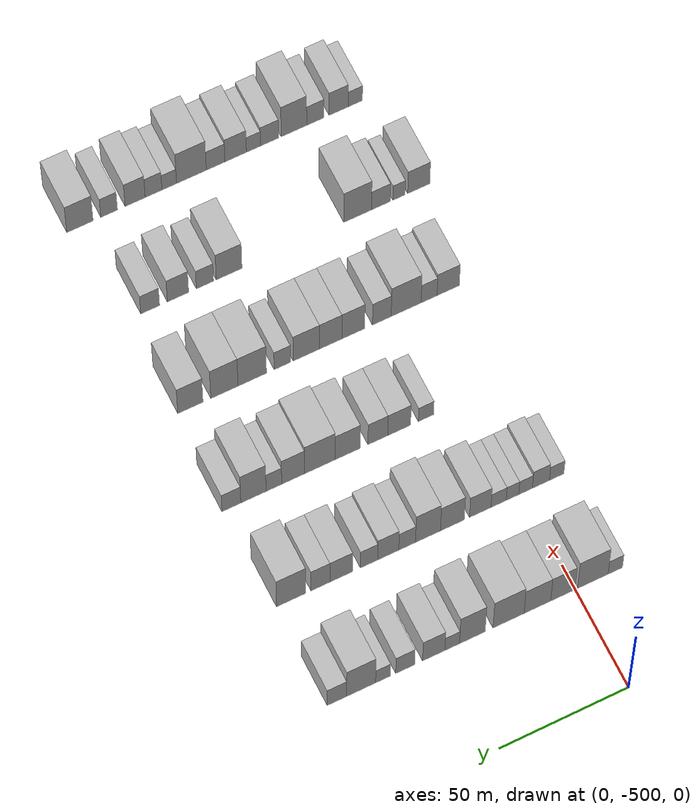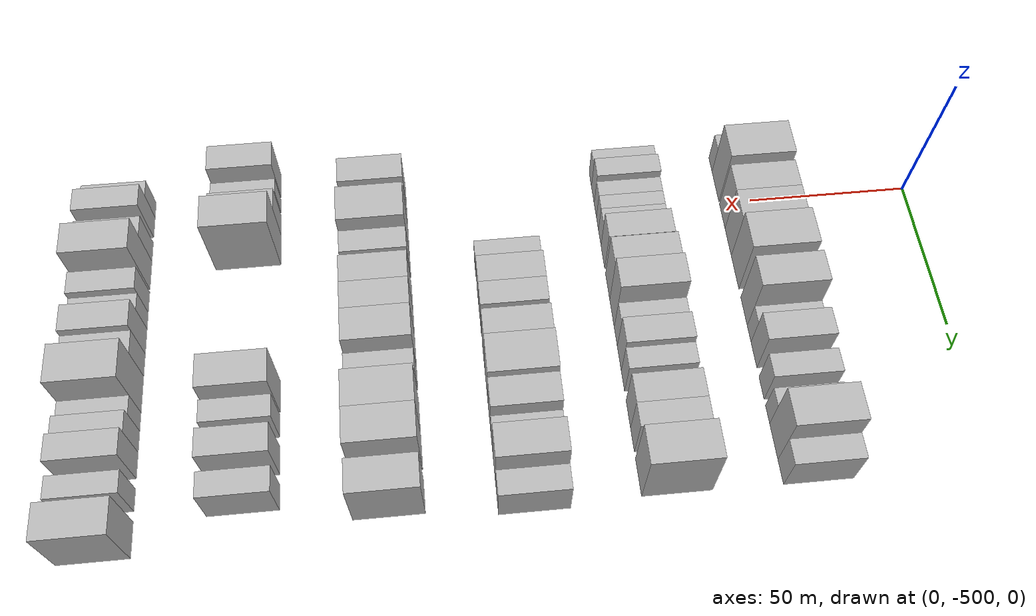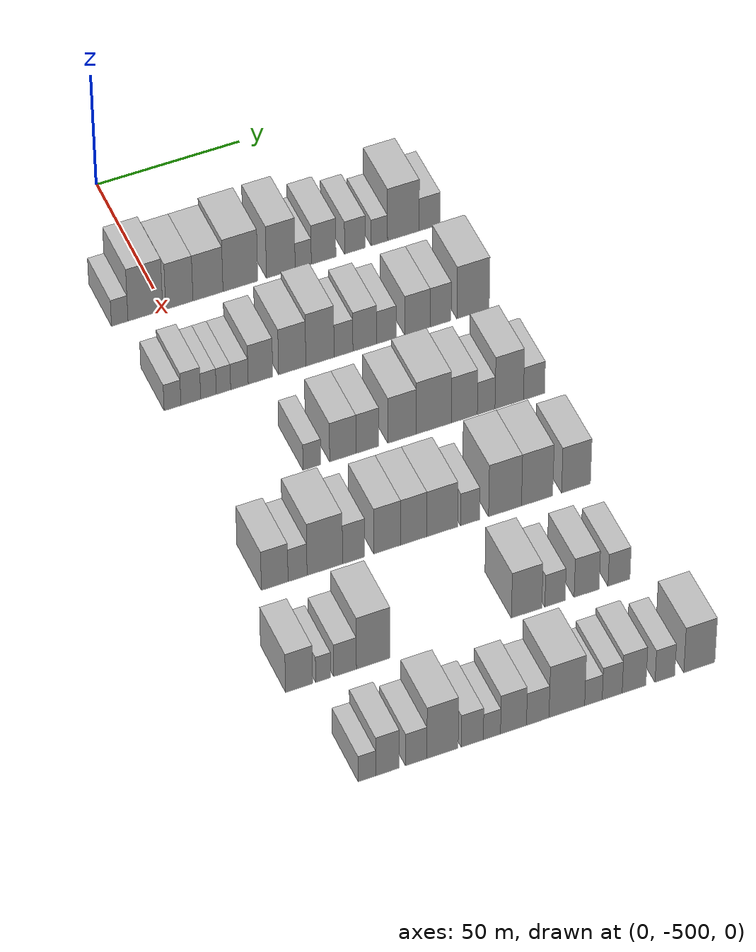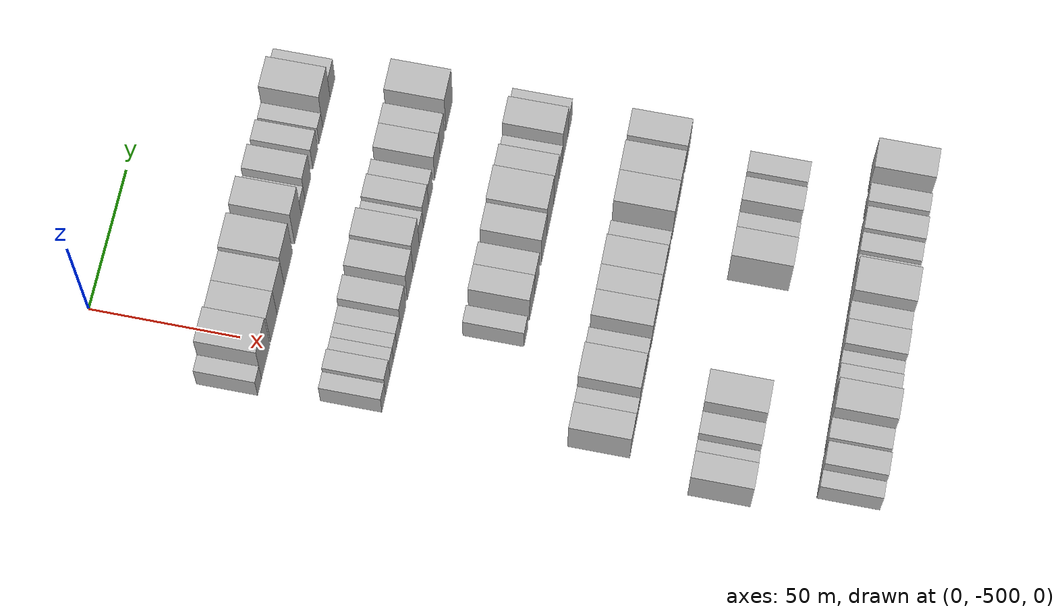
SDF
<sdf version="1.6">
 <world name="default">
  <model name="building_12">
   <static>1</static>
   <pose>50.0000 -515.4805 0 0.000000 0.000000 0.000000</pose>
   <link name="link">
    <pose>0 0 6.00 0 0 0</pose>
    <collision name="collision"><geometry><box><size>20.0000 5.6252 12.0000</size></box></geometry></collision>
    <visual name="visual">
     <cast_shadows>0</cast_shadows>
     <geometry><box><size>20.0000 5.6252 12.0000</size></box></geometry>
     <material>
      <script>
       <uri>model://HANNAS_wall/materials/scripts</uri>
       <uri>model://HANNAS_wall/materials/textures</uri>
       <name>vrc/HANNAS_wall</name>
      </script>
     </material>
    </visual>
   </link>
  </model>
  <model name="building_13">
   <static>1</static>
   <pose>50.0000 -506.7315 0 0.000000 0.000000 0.000000</pose>
   <link name="link">
    <pose>0 0 12.00 0 0 0</pose>
    <collision name="collision"><geometry><box><size>20.0000 11.8728 24.0000</size></box></geometry></collision>
    <visual name="visual">
     <cast_shadows>0</cast_shadows>
     <geometry><box><size>20.0000 11.8728 24.0000</size></box></geometry>
     <material>
      <script>
       <uri>model://HANNAS_wall/materials/scripts</uri>
       <uri>model://HANNAS_wall/materials/textures</uri>
       <name>vrc/HANNAS_wall</name>
      </script>
     </material>
    </visual>
   </link>
  </model>
  <model name="building_14">
   <static>1</static>
   <pose>50.0000 -495.1101 0 0.000000 0.000000 0.000000</pose>
   <link name="link">
    <pose>0 0 10.50 0 0 0</pose>
    <collision name="collision"><geometry><box><size>20.0000 9.3700 21.0000</size></box></geometry></collision>
    <visual name="visual">
     <cast_shadows>0</cast_shadows>
     <geometry><box><size>20.0000 9.3700 21.0000</size></box></geometry>
     <material>
      <script>
       <uri>model://HANNAS_wall/materials/scripts</uri>
       <uri>model://HANNAS_wall/materials/textures</uri>
       <name>vrc/HANNAS_wall</name>
      </script>
     </material>
    </visual>
   </link>
  </model>
  <model name="building_15">
   <static>1</static>
   <pose>50.0000 -485.2604 0 0.000000 0.000000 0.000000</pose>
   <link name="link">
    <pose>0 0 10.50 0 0 0</pose>
    <collision name="collision"><geometry><box><size>20.0000 10.3294 21.0000</size></box></geometry></collision>
    <visual name="visual">
     <cast_shadows>0</cast_shadows>
     <geometry><box><size>20.0000 10.3294 21.0000</size></box></geometry>
     <material>
      <script>
       <uri>model://HANNAS_wall/materials/scripts</uri>
       <uri>model://HANNAS_wall/materials/textures</uri>
       <name>vrc/HANNAS_wall</name>
      </script>
     </material>
    </visual>
   </link>
  </model>
  <model name="building_16">
   <static>1</static>
   <pose>50.0000 -474.0972 0 0.000000 0.000000 0.000000</pose>
   <link name="link">
    <pose>0 0 12.00 0 0 0</pose>
    <collision name="collision"><geometry><box><size>20.0000 11.9969 24.0000</size></box></geometry></collision>
    <visual name="visual">
     <cast_shadows>0</cast_shadows>
     <geometry><box><size>20.0000 11.9969 24.0000</size></box></geometry>
     <material>
      <script>
       <uri>model://HANNAS_wall/materials/scripts</uri>
       <uri>model://HANNAS_wall/materials/textures</uri>
       <name>vrc/HANNAS_wall</name>
      </script>
     </material>
    </visual>
   </link>
  </model>
  <model name="building_17">
   <static>1</static>
   <pose>50.0000 -460.1339 0 0.000000 0.000000 0.000000</pose>
   <link name="link">
    <pose>0 0 12.00 0 0 0</pose>
    <collision name="collision"><geometry><box><size>20.0000 9.9295 24.0000</size></box></geometry></collision>
    <visual name="visual">
     <cast_shadows>0</cast_shadows>
     <geometry><box><size>20.0000 9.9295 24.0000</size></box></geometry>
     <material>
      <script>
       <uri>model://HANNAS_wall/materials/scripts</uri>
       <uri>model://HANNAS_wall/materials/textures</uri>
       <name>vrc/HANNAS_wall</name>
      </script>
     </material>
    </visual>
   </link>
  </model>
  <model name="building_18">
   <static>1</static>
   <pose>50.0000 -452.3718 0 0.000000 0.000000 0.000000</pose>
   <link name="link">
    <pose>0 0 6.00 0 0 0</pose>
    <collision name="collision"><geometry><box><size>20.0000 5.5947 12.0000</size></box></geometry></collision>
    <visual name="visual">
     <cast_shadows>0</cast_shadows>
     <geometry><box><size>20.0000 5.5947 12.0000</size></box></geometry>
     <material>
      <script>
       <uri>model://HANNAS_wall/materials/scripts</uri>
       <uri>model://HANNAS_wall/materials/textures</uri>
       <name>vrc/HANNAS_wall</name>
      </script>
     </material>
    </visual>
   </link>
  </model>
  <model name="building_19">
   <static>1</static>
   <pose>50.0000 -445.2859 0 0.000000 0.000000 0.000000</pose>
   <link name="link">
    <pose>0 0 9.00 0 0 0</pose>
    <collision name="collision"><geometry><box><size>20.0000 8.5771 18.0000</size></box></geometry></collision>
    <visual name="visual">
     <cast_shadows>0</cast_shadows>
     <geometry><box><size>20.0000 8.5771 18.0000</size></box></geometry>
     <material>
      <script>
       <uri>model://HANNAS_wall/materials/scripts</uri>
       <uri>model://HANNAS_wall/materials/textures</uri>
       <name>vrc/HANNAS_wall</name>
      </script>
     </material>
    </visual>
   </link>
  </model>
  <model name="building_20">
   <static>1</static>
   <pose>50.0000 -434.3486 0 0.000000 0.000000 0.000000</pose>
   <link name="link">
    <pose>0 0 7.50 0 0 0</pose>
    <collision name="collision"><geometry><box><size>20.0000 7.2975 15.0000</size></box></geometry></collision>
    <visual name="visual">
     <cast_shadows>0</cast_shadows>
     <geometry><box><size>20.0000 7.2975 15.0000</size></box></geometry>
     <material>
      <script>
       <uri>model://HANNAS_wall/materials/scripts</uri>
       <uri>model://HANNAS_wall/materials/textures</uri>
       <name>vrc/HANNAS_wall</name>
      </script>
     </material>
    </visual>
   </link>
  </model>
  <model name="building_21">
   <static>1</static>
   <pose>50.0000 -425.8590 0 0.000000 0.000000 0.000000</pose>
   <link name="link">
    <pose>0 0 6.00 0 0 0</pose>
    <collision name="collision"><geometry><box><size>20.0000 5.6818 12.0000</size></box></geometry></collision>
    <visual name="visual">
     <cast_shadows>0</cast_shadows>
     <geometry><box><size>20.0000 5.6818 12.0000</size></box></geometry>
     <material>
      <script>
       <uri>model://HANNAS_wall/materials/scripts</uri>
       <uri>model://HANNAS_wall/materials/textures</uri>
       <name>vrc/HANNAS_wall</name>
      </script>
     </material>
    </visual>
   </link>
  </model>
  <model name="building_22">
   <static>1</static>
   <pose>50.0000 -417.4788 0 0.000000 0.000000 0.000000</pose>
   <link name="link">
    <pose>0 0 12.00 0 0 0</pose>
    <collision name="collision"><geometry><box><size>20.0000 11.0785 24.0000</size></box></geometry></collision>
    <visual name="visual">
     <cast_shadows>0</cast_shadows>
     <geometry><box><size>20.0000 11.0785 24.0000</size></box></geometry>
     <material>
      <script>
       <uri>model://HANNAS_wall/materials/scripts</uri>
       <uri>model://HANNAS_wall/materials/textures</uri>
       <name>vrc/HANNAS_wall</name>
      </script>
     </material>
    </visual>
   </link>
  </model>
  <model name="building_23">
   <static>1</static>
   <pose>50.0000 -408.2307 0 0.000000 0.000000 0.000000</pose>
   <link name="link">
    <pose>0 0 7.50 0 0 0</pose>
    <collision name="collision"><geometry><box><size>20.0000 7.4177 15.0000</size></box></geometry></collision>
    <visual name="visual">
     <cast_shadows>0</cast_shadows>
     <geometry><box><size>20.0000 7.4177 15.0000</size></box></geometry>
     <material>
      <script>
       <uri>model://HANNAS_wall/materials/scripts</uri>
       <uri>model://HANNAS_wall/materials/textures</uri>
       <name>vrc/HANNAS_wall</name>
      </script>
     </material>
    </visual>
   </link>
  </model>
  <model name="building_146">
   <static>1</static>
   <pose>90.0000 -513.3403 0 0.000000 0.000000 0.000000</pose>
   <link name="link">
    <pose>0 0 6.00 0 0 0</pose>
    <collision name="collision"><geometry><box><size>20.0000 5.6659 12.0000</size></box></geometry></collision>
    <visual name="visual">
     <cast_shadows>0</cast_shadows>
     <geometry><box><size>20.0000 5.6659 12.0000</size></box></geometry>
     <material>
      <script>
       <uri>model://HANNAS_wall/materials/scripts</uri>
       <uri>model://HANNAS_wall/materials/textures</uri>
       <name>vrc/HANNAS_wall</name>
      </script>
     </material>
    </visual>
   </link>
  </model>
  <model name="building_147">
   <static>1</static>
   <pose>90.0000 -507.1671 0 0.000000 0.000000 0.000000</pose>
   <link name="link">
    <pose>0 0 7.50 0 0 0</pose>
    <collision name="collision"><geometry><box><size>20.0000 6.6805 15.0000</size></box></geometry></collision>
    <visual name="visual">
     <cast_shadows>0</cast_shadows>
     <geometry><box><size>20.0000 6.6805 15.0000</size></box></geometry>
     <material>
      <script>
       <uri>model://HANNAS_wall/materials/scripts</uri>
       <uri>model://HANNAS_wall/materials/textures</uri>
       <name>vrc/HANNAS_wall</name>
      </script>
     </material>
    </visual>
   </link>
  </model>
  <model name="building_148">
   <static>1</static>
   <pose>90.0000 -501.1822 0 0.000000 0.000000 0.000000</pose>
   <link name="link">
    <pose>0 0 6.00 0 0 0</pose>
    <collision name="collision"><geometry><box><size>20.0000 5.2893 12.0000</size></box></geometry></collision>
    <visual name="visual">
     <cast_shadows>0</cast_shadows>
     <geometry><box><size>20.0000 5.2893 12.0000</size></box></geometry>
     <material>
      <script>
       <uri>model://HANNAS_wall/materials/scripts</uri>
       <uri>model://HANNAS_wall/materials/textures</uri>
       <name>vrc/HANNAS_wall</name>
      </script>
     </material>
    </visual>
   </link>
  </model>
  <model name="building_149">
   <static>1</static>
   <pose>90.0000 -496.0963 0 0.000000 0.000000 0.000000</pose>
   <link name="link">
    <pose>0 0 6.00 0 0 0</pose>
    <collision name="collision"><geometry><box><size>20.0000 4.8825 12.0000</size></box></geometry></collision>
    <visual name="visual">
     <cast_shadows>0</cast_shadows>
     <geometry><box><size>20.0000 4.8825 12.0000</size></box></geometry>
     <material>
      <script>
       <uri>model://HANNAS_wall/materials/scripts</uri>
       <uri>model://HANNAS_wall/materials/textures</uri>
       <name>vrc/HANNAS_wall</name>
      </script>
     </material>
    </visual>
   </link>
  </model>
  <model name="building_150">
   <static>1</static>
   <pose>90.0000 -490.6721 0 0.000000 0.000000 0.000000</pose>
   <link name="link">
    <pose>0 0 6.00 0 0 0</pose>
    <collision name="collision"><geometry><box><size>20.0000 5.9660 12.0000</size></box></geometry></collision>
    <visual name="visual">
     <cast_shadows>0</cast_shadows>
     <geometry><box><size>20.0000 5.9660 12.0000</size></box></geometry>
     <material>
      <script>
       <uri>model://HANNAS_wall/materials/scripts</uri>
       <uri>model://HANNAS_wall/materials/textures</uri>
       <name>vrc/HANNAS_wall</name>
      </script>
     </material>
    </visual>
   </link>
  </model>
  <model name="building_151">
   <static>1</static>
   <pose>90.0000 -483.5134 0 0.000000 0.000000 0.000000</pose>
   <link name="link">
    <pose>0 0 9.00 0 0 0</pose>
    <collision name="collision"><geometry><box><size>20.0000 8.3514 18.0000</size></box></geometry></collision>
    <visual name="visual">
     <cast_shadows>0</cast_shadows>
     <geometry><box><size>20.0000 8.3514 18.0000</size></box></geometry>
     <material>
      <script>
       <uri>model://HANNAS_wall/materials/scripts</uri>
       <uri>model://HANNAS_wall/materials/textures</uri>
       <name>vrc/HANNAS_wall</name>
      </script>
     </material>
    </visual>
   </link>
  </model>
  <model name="building_152">
   <static>1</static>
   <pose>90.0000 -472.6928 0 0.000000 0.000000 0.000000</pose>
   <link name="link">
    <pose>0 0 10.50 0 0 0</pose>
    <collision name="collision"><geometry><box><size>20.0000 9.2897 21.0000</size></box></geometry></collision>
    <visual name="visual">
     <cast_shadows>0</cast_shadows>
     <geometry><box><size>20.0000 9.2897 21.0000</size></box></geometry>
     <material>
      <script>
       <uri>model://HANNAS_wall/materials/scripts</uri>
       <uri>model://HANNAS_wall/materials/textures</uri>
       <name>vrc/HANNAS_wall</name>
      </script>
     </material>
    </visual>
   </link>
  </model>
  <model name="building_153">
   <static>1</static>
   <pose>90.0000 -463.2163 0 0.000000 0.000000 0.000000</pose>
   <link name="link">
    <pose>0 0 12.00 0 0 0</pose>
    <collision name="collision"><geometry><box><size>20.0000 9.6632 24.0000</size></box></geometry></collision>
    <visual name="visual">
     <cast_shadows>0</cast_shadows>
     <geometry><box><size>20.0000 9.6632 24.0000</size></box></geometry>
     <material>
      <script>
       <uri>model://HANNAS_wall/materials/scripts</uri>
       <uri>model://HANNAS_wall/materials/textures</uri>
       <name>vrc/HANNAS_wall</name>
      </script>
     </material>
    </visual>
   </link>
  </model>
  <model name="building_154">
   <static>1</static>
   <pose>90.0000 -455.1563 0 0.000000 0.000000 0.000000</pose>
   <link name="link">
    <pose>0 0 7.50 0 0 0</pose>
    <collision name="collision"><geometry><box><size>20.0000 6.4568 15.0000</size></box></geometry></collision>
    <visual name="visual">
     <cast_shadows>0</cast_shadows>
     <geometry><box><size>20.0000 6.4568 15.0000</size></box></geometry>
     <material>
      <script>
       <uri>model://HANNAS_wall/materials/scripts</uri>
       <uri>model://HANNAS_wall/materials/textures</uri>
       <name>vrc/HANNAS_wall</name>
      </script>
     </material>
    </visual>
   </link>
  </model>
  <model name="building_155">
   <static>1</static>
   <pose>90.0000 -447.8474 0 0.000000 0.000000 0.000000</pose>
   <link name="link">
    <pose>0 0 9.00 0 0 0</pose>
    <collision name="collision"><geometry><box><size>20.0000 8.1611 18.0000</size></box></geometry></collision>
    <visual name="visual">
     <cast_shadows>0</cast_shadows>
     <geometry><box><size>20.0000 8.1611 18.0000</size></box></geometry>
     <material>
      <script>
       <uri>model://HANNAS_wall/materials/scripts</uri>
       <uri>model://HANNAS_wall/materials/textures</uri>
       <name>vrc/HANNAS_wall</name>
      </script>
     </material>
    </visual>
   </link>
  </model>
  <model name="building_156">
   <static>1</static>
   <pose>90.0000 -440.4333 0 0.000000 0.000000 0.000000</pose>
   <link name="link">
    <pose>0 0 7.50 0 0 0</pose>
    <collision name="collision"><geometry><box><size>20.0000 6.6672 15.0000</size></box></geometry></collision>
    <visual name="visual">
     <cast_shadows>0</cast_shadows>
     <geometry><box><size>20.0000 6.6672 15.0000</size></box></geometry>
     <material>
      <script>
       <uri>model://HANNAS_wall/materials/scripts</uri>
       <uri>model://HANNAS_wall/materials/textures</uri>
       <name>vrc/HANNAS_wall</name>
      </script>
     </material>
    </visual>
   </link>
  </model>
  <model name="building_157">
   <static>1</static>
   <pose>90.0000 -429.7325 0 0.000000 0.000000 0.000000</pose>
   <link name="link">
    <pose>0 0 9.00 0 0 0</pose>
    <collision name="collision"><geometry><box><size>20.0000 8.7343 18.0000</size></box></geometry></collision>
    <visual name="visual">
     <cast_shadows>0</cast_shadows>
     <geometry><box><size>20.0000 8.7343 18.0000</size></box></geometry>
     <material>
      <script>
       <uri>model://HANNAS_wall/materials/scripts</uri>
       <uri>model://HANNAS_wall/materials/textures</uri>
       <name>vrc/HANNAS_wall</name>
      </script>
     </material>
    </visual>
   </link>
  </model>
  <model name="building_158">
   <static>1</static>
   <pose>90.0000 -421.7215 0 0.000000 0.000000 0.000000</pose>
   <link name="link">
    <pose>0 0 9.00 0 0 0</pose>
    <collision name="collision"><geometry><box><size>20.0000 7.2876 18.0000</size></box></geometry></collision>
    <visual name="visual">
     <cast_shadows>0</cast_shadows>
     <geometry><box><size>20.0000 7.2876 18.0000</size></box></geometry>
     <material>
      <script>
       <uri>model://HANNAS_wall/materials/scripts</uri>
       <uri>model://HANNAS_wall/materials/textures</uri>
       <name>vrc/HANNAS_wall</name>
      </script>
     </material>
    </visual>
   </link>
  </model>
  <model name="building_159">
   <static>1</static>
   <pose>90.0000 -410.4577 0 0.000000 0.000000 0.000000</pose>
   <link name="link">
    <pose>0 0 12.00 0 0 0</pose>
    <collision name="collision"><geometry><box><size>20.0000 11.2401 24.0000</size></box></geometry></collision>
    <visual name="visual">
     <cast_shadows>0</cast_shadows>
     <geometry><box><size>20.0000 11.2401 24.0000</size></box></geometry>
     <material>
      <script>
       <uri>model://HANNAS_wall/materials/scripts</uri>
       <uri>model://HANNAS_wall/materials/textures</uri>
       <name>vrc/HANNAS_wall</name>
      </script>
     </material>
    </visual>
   </link>
  </model>
  <model name="building_294">
   <static>1</static>
   <pose>130.0000 -482.5996 0 0.000000 0.000000 0.000000</pose>
   <link name="link">
    <pose>0 0 6.00 0 0 0</pose>
    <collision name="collision"><geometry><box><size>20.0000 5.9852 12.0000</size></box></geometry></collision>
    <visual name="visual">
     <cast_shadows>0</cast_shadows>
     <geometry><box><size>20.0000 5.9852 12.0000</size></box></geometry>
     <material>
      <script>
       <uri>model://HANNAS_wall/materials/scripts</uri>
       <uri>model://HANNAS_wall/materials/textures</uri>
       <name>vrc/HANNAS_wall</name>
      </script>
     </material>
    </visual>
   </link>
  </model>
  <model name="building_295">
   <static>1</static>
   <pose>130.0000 -472.1514 0 0.000000 0.000000 0.000000</pose>
   <link name="link">
    <pose>0 0 9.00 0 0 0</pose>
    <collision name="collision"><geometry><box><size>20.0000 8.9113 18.0000</size></box></geometry></collision>
    <visual name="visual">
     <cast_shadows>0</cast_shadows>
     <geometry><box><size>20.0000 8.9113 18.0000</size></box></geometry>
     <material>
      <script>
       <uri>model://HANNAS_wall/materials/scripts</uri>
       <uri>model://HANNAS_wall/materials/textures</uri>
       <name>vrc/HANNAS_wall</name>
      </script>
     </material>
    </visual>
   </link>
  </model>
  <model name="building_296">
   <static>1</static>
   <pose>130.0000 -463.8234 0 0.000000 0.000000 0.000000</pose>
   <link name="link">
    <pose>0 0 9.00 0 0 0</pose>
    <collision name="collision"><geometry><box><size>20.0000 7.7445 18.0000</size></box></geometry></collision>
    <visual name="visual">
     <cast_shadows>0</cast_shadows>
     <geometry><box><size>20.0000 7.7445 18.0000</size></box></geometry>
     <material>
      <script>
       <uri>model://HANNAS_wall/materials/scripts</uri>
       <uri>model://HANNAS_wall/materials/textures</uri>
       <name>vrc/HANNAS_wall</name>
      </script>
     </material>
    </visual>
   </link>
  </model>
  <model name="building_297">
   <static>1</static>
   <pose>130.0000 -452.1251 0 0.000000 0.000000 0.000000</pose>
   <link name="link">
    <pose>0 0 10.50 0 0 0</pose>
    <collision name="collision"><geometry><box><size>20.0000 9.6521 21.0000</size></box></geometry></collision>
    <visual name="visual">
     <cast_shadows>0</cast_shadows>
     <geometry><box><size>20.0000 9.6521 21.0000</size></box></geometry>
     <material>
      <script>
       <uri>model://HANNAS_wall/materials/scripts</uri>
       <uri>model://HANNAS_wall/materials/textures</uri>
       <name>vrc/HANNAS_wall</name>
      </script>
     </material>
    </visual>
   </link>
  </model>
  <model name="building_298">
   <static>1</static>
   <pose>130.0000 -441.3239 0 0.000000 0.000000 0.000000</pose>
   <link name="link">
    <pose>0 0 12.00 0 0 0</pose>
    <collision name="collision"><geometry><box><size>20.0000 11.9503 24.0000</size></box></geometry></collision>
    <visual name="visual">
     <cast_shadows>0</cast_shadows>
     <geometry><box><size>20.0000 11.9503 24.0000</size></box></geometry>
     <material>
      <script>
       <uri>model://HANNAS_wall/materials/scripts</uri>
       <uri>model://HANNAS_wall/materials/textures</uri>
       <name>vrc/HANNAS_wall</name>
      </script>
     </material>
    </visual>
   </link>
  </model>
  <model name="building_299">
   <static>1</static>
   <pose>130.0000 -430.9028 0 0.000000 0.000000 0.000000</pose>
   <link name="link">
    <pose>0 0 10.50 0 0 0</pose>
    <collision name="collision"><geometry><box><size>20.0000 8.8920 21.0000</size></box></geometry></collision>
    <visual name="visual">
     <cast_shadows>0</cast_shadows>
     <geometry><box><size>20.0000 8.8920 21.0000</size></box></geometry>
     <material>
      <script>
       <uri>model://HANNAS_wall/materials/scripts</uri>
       <uri>model://HANNAS_wall/materials/textures</uri>
       <name>vrc/HANNAS_wall</name>
      </script>
     </material>
    </visual>
   </link>
  </model>
  <model name="building_300">
   <static>1</static>
   <pose>130.0000 -423.4336 0 0.000000 0.000000 0.000000</pose>
   <link name="link">
    <pose>0 0 7.50 0 0 0</pose>
    <collision name="collision"><geometry><box><size>20.0000 6.0465 15.0000</size></box></geometry></collision>
    <visual name="visual">
     <cast_shadows>0</cast_shadows>
     <geometry><box><size>20.0000 6.0465 15.0000</size></box></geometry>
     <material>
      <script>
       <uri>model://HANNAS_wall/materials/scripts</uri>
       <uri>model://HANNAS_wall/materials/textures</uri>
       <name>vrc/HANNAS_wall</name>
      </script>
     </material>
    </visual>
   </link>
  </model>
  <model name="building_301">
   <static>1</static>
   <pose>130.0000 -415.5294 0 0.000000 0.000000 0.000000</pose>
   <link name="link">
    <pose>0 0 12.00 0 0 0</pose>
    <collision name="collision"><geometry><box><size>20.0000 9.7619 24.0000</size></box></geometry></collision>
    <visual name="visual">
     <cast_shadows>0</cast_shadows>
     <geometry><box><size>20.0000 9.7619 24.0000</size></box></geometry>
     <material>
      <script>
       <uri>model://HANNAS_wall/materials/scripts</uri>
       <uri>model://HANNAS_wall/materials/textures</uri>
       <name>vrc/HANNAS_wall</name>
      </script>
     </material>
    </visual>
   </link>
  </model>
  <model name="building_302">
   <static>1</static>
   <pose>130.0000 -407.0088 0 0.000000 0.000000 0.000000</pose>
   <link name="link">
    <pose>0 0 7.50 0 0 0</pose>
    <collision name="collision"><geometry><box><size>20.0000 7.2794 15.0000</size></box></geometry></collision>
    <visual name="visual">
     <cast_shadows>0</cast_shadows>
     <geometry><box><size>20.0000 7.2794 15.0000</size></box></geometry>
     <material>
      <script>
       <uri>model://HANNAS_wall/materials/scripts</uri>
       <uri>model://HANNAS_wall/materials/textures</uri>
       <name>vrc/HANNAS_wall</name>
      </script>
     </material>
    </visual>
   </link>
  </model>
  <model name="building_428">
   <static>1</static>
   <pose>170.0000 -511.5106 0 0.000000 0.000000 0.000000</pose>
   <link name="link">
    <pose>0 0 9.00 0 0 0</pose>
    <collision name="collision"><geometry><box><size>20.0000 8.8191 18.0000</size></box></geometry></collision>
    <visual name="visual">
     <cast_shadows>0</cast_shadows>
     <geometry><box><size>20.0000 8.8191 18.0000</size></box></geometry>
     <material>
      <script>
       <uri>model://HANNAS_wall/materials/scripts</uri>
       <uri>model://HANNAS_wall/materials/textures</uri>
       <name>vrc/HANNAS_wall</name>
      </script>
     </material>
    </visual>
   </link>
  </model>
  <model name="building_429">
   <static>1</static>
   <pose>170.0000 -503.9592 0 0.000000 0.000000 0.000000</pose>
   <link name="link">
    <pose>0 0 7.50 0 0 0</pose>
    <collision name="collision"><geometry><box><size>20.0000 6.2838 15.0000</size></box></geometry></collision>
    <visual name="visual">
     <cast_shadows>0</cast_shadows>
     <geometry><box><size>20.0000 6.2838 15.0000</size></box></geometry>
     <material>
      <script>
       <uri>model://HANNAS_wall/materials/scripts</uri>
       <uri>model://HANNAS_wall/materials/textures</uri>
       <name>vrc/HANNAS_wall</name>
      </script>
     </material>
    </visual>
   </link>
  </model>
  <model name="building_430">
   <static>1</static>
   <pose>170.0000 -494.9227 0 0.000000 0.000000 0.000000</pose>
   <link name="link">
    <pose>0 0 12.00 0 0 0</pose>
    <collision name="collision"><geometry><box><size>20.0000 11.7892 24.0000</size></box></geometry></collision>
    <visual name="visual">
     <cast_shadows>0</cast_shadows>
     <geometry><box><size>20.0000 11.7892 24.0000</size></box></geometry>
     <material>
      <script>
       <uri>model://HANNAS_wall/materials/scripts</uri>
       <uri>model://HANNAS_wall/materials/textures</uri>
       <name>vrc/HANNAS_wall</name>
      </script>
     </material>
    </visual>
   </link>
  </model>
  <model name="building_431">
   <static>1</static>
   <pose>170.0000 -485.3421 0 0.000000 0.000000 0.000000</pose>
   <link name="link">
    <pose>0 0 9.00 0 0 0</pose>
    <collision name="collision"><geometry><box><size>20.0000 7.3720 18.0000</size></box></geometry></collision>
    <visual name="visual">
     <cast_shadows>0</cast_shadows>
     <geometry><box><size>20.0000 7.3720 18.0000</size></box></geometry>
     <material>
      <script>
       <uri>model://HANNAS_wall/materials/scripts</uri>
       <uri>model://HANNAS_wall/materials/textures</uri>
       <name>vrc/HANNAS_wall</name>
      </script>
     </material>
    </visual>
   </link>
  </model>
  <model name="building_432">
   <static>1</static>
   <pose>170.0000 -474.1644 0 0.000000 0.000000 0.000000</pose>
   <link name="link">
    <pose>0 0 10.50 0 0 0</pose>
    <collision name="collision"><geometry><box><size>20.0000 8.9835 21.0000</size></box></geometry></collision>
    <visual name="visual">
     <cast_shadows>0</cast_shadows>
     <geometry><box><size>20.0000 8.9835 21.0000</size></box></geometry>
     <material>
      <script>
       <uri>model://HANNAS_wall/materials/scripts</uri>
       <uri>model://HANNAS_wall/materials/textures</uri>
       <name>vrc/HANNAS_wall</name>
      </script>
     </material>
    </visual>
   </link>
  </model>
  <model name="building_433">
   <static>1</static>
   <pose>170.0000 -465.2989 0 0.000000 0.000000 0.000000</pose>
   <link name="link">
    <pose>0 0 10.50 0 0 0</pose>
    <collision name="collision"><geometry><box><size>20.0000 8.7475 21.0000</size></box></geometry></collision>
    <visual name="visual">
     <cast_shadows>0</cast_shadows>
     <geometry><box><size>20.0000 8.7475 21.0000</size></box></geometry>
     <material>
      <script>
       <uri>model://HANNAS_wall/materials/scripts</uri>
       <uri>model://HANNAS_wall/materials/textures</uri>
       <name>vrc/HANNAS_wall</name>
      </script>
     </material>
    </visual>
   </link>
  </model>
  <model name="building_434">
   <static>1</static>
   <pose>170.0000 -455.7419 0 0.000000 0.000000 0.000000</pose>
   <link name="link">
    <pose>0 0 10.50 0 0 0</pose>
    <collision name="collision"><geometry><box><size>20.0000 10.3663 21.0000</size></box></geometry></collision>
    <visual name="visual">
     <cast_shadows>0</cast_shadows>
     <geometry><box><size>20.0000 10.3663 21.0000</size></box></geometry>
     <material>
      <script>
       <uri>model://HANNAS_wall/materials/scripts</uri>
       <uri>model://HANNAS_wall/materials/textures</uri>
       <name>vrc/HANNAS_wall</name>
      </script>
     </material>
    </visual>
   </link>
  </model>
  <model name="building_435">
   <static>1</static>
   <pose>170.0000 -446.3573 0 0.000000 0.000000 0.000000</pose>
   <link name="link">
    <pose>0 0 7.50 0 0 0</pose>
    <collision name="collision"><geometry><box><size>20.0000 6.4030 15.0000</size></box></geometry></collision>
    <visual name="visual">
     <cast_shadows>0</cast_shadows>
     <geometry><box><size>20.0000 6.4030 15.0000</size></box></geometry>
     <material>
      <script>
       <uri>model://HANNAS_wall/materials/scripts</uri>
       <uri>model://HANNAS_wall/materials/textures</uri>
       <name>vrc/HANNAS_wall</name>
      </script>
     </material>
    </visual>
   </link>
  </model>
  <model name="building_436">
   <static>1</static>
   <pose>170.0000 -434.6001 0 0.000000 0.000000 0.000000</pose>
   <link name="link">
    <pose>0 0 12.00 0 0 0</pose>
    <collision name="collision"><geometry><box><size>20.0000 11.1113 24.0000</size></box></geometry></collision>
    <visual name="visual">
     <cast_shadows>0</cast_shadows>
     <geometry><box><size>20.0000 11.1113 24.0000</size></box></geometry>
     <material>
      <script>
       <uri>model://HANNAS_wall/materials/scripts</uri>
       <uri>model://HANNAS_wall/materials/textures</uri>
       <name>vrc/HANNAS_wall</name>
      </script>
     </material>
    </visual>
   </link>
  </model>
  <model name="building_437">
   <static>1</static>
   <pose>170.0000 -423.7478 0 0.000000 0.000000 0.000000</pose>
   <link name="link">
    <pose>0 0 12.00 0 0 0</pose>
    <collision name="collision"><geometry><box><size>20.0000 10.5933 24.0000</size></box></geometry></collision>
    <visual name="visual">
     <cast_shadows>0</cast_shadows>
     <geometry><box><size>20.0000 10.5933 24.0000</size></box></geometry>
     <material>
      <script>
       <uri>model://HANNAS_wall/materials/scripts</uri>
       <uri>model://HANNAS_wall/materials/textures</uri>
       <name>vrc/HANNAS_wall</name>
      </script>
     </material>
    </visual>
   </link>
  </model>
  <model name="building_438">
   <static>1</static>
   <pose>170.0000 -410.5399 0 0.000000 0.000000 0.000000</pose>
   <link name="link">
    <pose>0 0 10.50 0 0 0</pose>
    <collision name="collision"><geometry><box><size>20.0000 9.8226 21.0000</size></box></geometry></collision>
    <visual name="visual">
     <cast_shadows>0</cast_shadows>
     <geometry><box><size>20.0000 9.8226 21.0000</size></box></geometry>
     <material>
      <script>
       <uri>model://HANNAS_wall/materials/scripts</uri>
       <uri>model://HANNAS_wall/materials/textures</uri>
       <name>vrc/HANNAS_wall</name>
      </script>
     </material>
    </visual>
   </link>
  </model>
  <model name="building_558">
   <static>1</static>
   <pose>210.0000 -519.9972 0 0.000000 0.000000 0.000000</pose>
   <link name="link">
    <pose>0 0 9.00 0 0 0</pose>
    <collision name="collision"><geometry><box><size>20.0000 8.8155 18.0000</size></box></geometry></collision>
    <visual name="visual">
     <cast_shadows>0</cast_shadows>
     <geometry><box><size>20.0000 8.8155 18.0000</size></box></geometry>
     <material>
      <script>
       <uri>model://HANNAS_wall/materials/scripts</uri>
       <uri>model://HANNAS_wall/materials/textures</uri>
       <name>vrc/HANNAS_wall</name>
      </script>
     </material>
    </visual>
   </link>
  </model>
  <model name="building_559">
   <static>1</static>
   <pose>210.0000 -512.1459 0 0.000000 0.000000 0.000000</pose>
   <link name="link">
    <pose>0 0 6.00 0 0 0</pose>
    <collision name="collision"><geometry><box><size>20.0000 4.8871 12.0000</size></box></geometry></collision>
    <visual name="visual">
     <cast_shadows>0</cast_shadows>
     <geometry><box><size>20.0000 4.8871 12.0000</size></box></geometry>
     <material>
      <script>
       <uri>model://HANNAS_wall/materials/scripts</uri>
       <uri>model://HANNAS_wall/materials/textures</uri>
       <name>vrc/HANNAS_wall</name>
      </script>
     </material>
    </visual>
   </link>
  </model>
  <model name="building_560">
   <static>1</static>
   <pose>210.0000 -504.9843 0 0.000000 0.000000 0.000000</pose>
   <link name="link">
    <pose>0 0 7.50 0 0 0</pose>
    <collision name="collision"><geometry><box><size>20.0000 7.4360 15.0000</size></box></geometry></collision>
    <visual name="visual">
     <cast_shadows>0</cast_shadows>
     <geometry><box><size>20.0000 7.4360 15.0000</size></box></geometry>
     <material>
      <script>
       <uri>model://HANNAS_wall/materials/scripts</uri>
       <uri>model://HANNAS_wall/materials/textures</uri>
       <name>vrc/HANNAS_wall</name>
      </script>
     </material>
    </visual>
   </link>
  </model>
  <model name="building_561">
   <static>1</static>
   <pose>210.0000 -495.7534 0 0.000000 0.000000 0.000000</pose>
   <link name="link">
    <pose>0 0 12.00 0 0 0</pose>
    <collision name="collision"><geometry><box><size>20.0000 11.0258 24.0000</size></box></geometry></collision>
    <visual name="visual">
     <cast_shadows>0</cast_shadows>
     <geometry><box><size>20.0000 11.0258 24.0000</size></box></geometry>
     <material>
      <script>
       <uri>model://HANNAS_wall/materials/scripts</uri>
       <uri>model://HANNAS_wall/materials/textures</uri>
       <name>vrc/HANNAS_wall</name>
      </script>
     </material>
    </visual>
   </link>
  </model>
  <model name="building_562">
   <static>1</static>
   <pose>210.0000 -445.0368 0 0.000000 0.000000 0.000000</pose>
   <link name="link">
    <pose>0 0 10.50 0 0 0</pose>
    <collision name="collision"><geometry><box><size>20.0000 10.1359 21.0000</size></box></geometry></collision>
    <visual name="visual">
     <cast_shadows>0</cast_shadows>
     <geometry><box><size>20.0000 10.1359 21.0000</size></box></geometry>
     <material>
      <script>
       <uri>model://HANNAS_wall/materials/scripts</uri>
       <uri>model://HANNAS_wall/materials/textures</uri>
       <name>vrc/HANNAS_wall</name>
      </script>
     </material>
    </visual>
   </link>
  </model>
  <model name="building_563">
   <static>1</static>
   <pose>210.0000 -435.5763 0 0.000000 0.000000 0.000000</pose>
   <link name="link">
    <pose>0 0 7.50 0 0 0</pose>
    <collision name="collision"><geometry><box><size>20.0000 6.7851 15.0000</size></box></geometry></collision>
    <visual name="visual">
     <cast_shadows>0</cast_shadows>
     <geometry><box><size>20.0000 6.7851 15.0000</size></box></geometry>
     <material>
      <script>
       <uri>model://HANNAS_wall/materials/scripts</uri>
       <uri>model://HANNAS_wall/materials/textures</uri>
       <name>vrc/HANNAS_wall</name>
      </script>
     </material>
    </visual>
   </link>
  </model>
  <model name="building_564">
   <static>1</static>
   <pose>210.0000 -425.0028 0 0.000000 0.000000 0.000000</pose>
   <link name="link">
    <pose>0 0 9.00 0 0 0</pose>
    <collision name="collision"><geometry><box><size>20.0000 8.3617 18.0000</size></box></geometry></collision>
    <visual name="visual">
     <cast_shadows>0</cast_shadows>
     <geometry><box><size>20.0000 8.3617 18.0000</size></box></geometry>
     <material>
      <script>
       <uri>model://HANNAS_wall/materials/scripts</uri>
       <uri>model://HANNAS_wall/materials/textures</uri>
       <name>vrc/HANNAS_wall</name>
      </script>
     </material>
    </visual>
   </link>
  </model>
  <model name="building_565">
   <static>1</static>
   <pose>210.0000 -414.1331 0 0.000000 0.000000 0.000000</pose>
   <link name="link">
    <pose>0 0 7.50 0 0 0</pose>
    <collision name="collision"><geometry><box><size>20.0000 7.3777 15.0000</size></box></geometry></collision>
    <visual name="visual">
     <cast_shadows>0</cast_shadows>
     <geometry><box><size>20.0000 7.3777 15.0000</size></box></geometry>
     <material>
      <script>
       <uri>model://HANNAS_wall/materials/scripts</uri>
       <uri>model://HANNAS_wall/materials/textures</uri>
       <name>vrc/HANNAS_wall</name>
      </script>
     </material>
    </visual>
   </link>
  </model>
  <model name="building_692">
   <static>1</static>
   <pose>250.0000 -514.7310 0 0.000000 0.000000 0.000000</pose>
   <link name="link">
    <pose>0 0 6.00 0 0 0</pose>
    <collision name="collision"><geometry><box><size>20.0000 5.6488 12.0000</size></box></geometry></collision>
    <visual name="visual">
     <cast_shadows>0</cast_shadows>
     <geometry><box><size>20.0000 5.6488 12.0000</size></box></geometry>
     <material>
      <script>
       <uri>model://HANNAS_wall/materials/scripts</uri>
       <uri>model://HANNAS_wall/materials/textures</uri>
       <name>vrc/HANNAS_wall</name>
      </script>
     </material>
    </visual>
   </link>
  </model>
  <model name="building_693">
   <static>1</static>
   <pose>250.0000 -508.0712 0 0.000000 0.000000 0.000000</pose>
   <link name="link">
    <pose>0 0 9.00 0 0 0</pose>
    <collision name="collision"><geometry><box><size>20.0000 7.6709 18.0000</size></box></geometry></collision>
    <visual name="visual">
     <cast_shadows>0</cast_shadows>
     <geometry><box><size>20.0000 7.6709 18.0000</size></box></geometry>
     <material>
      <script>
       <uri>model://HANNAS_wall/materials/scripts</uri>
       <uri>model://HANNAS_wall/materials/textures</uri>
       <name>vrc/HANNAS_wall</name>
      </script>
     </material>
    </visual>
   </link>
  </model>
  <model name="building_694">
   <static>1</static>
   <pose>250.0000 -498.7770 0 0.000000 0.000000 0.000000</pose>
   <link name="link">
    <pose>0 0 7.50 0 0 0</pose>
    <collision name="collision"><geometry><box><size>20.0000 6.9175 15.0000</size></box></geometry></collision>
    <visual name="visual">
     <cast_shadows>0</cast_shadows>
     <geometry><box><size>20.0000 6.9175 15.0000</size></box></geometry>
     <material>
      <script>
       <uri>model://HANNAS_wall/materials/scripts</uri>
       <uri>model://HANNAS_wall/materials/textures</uri>
       <name>vrc/HANNAS_wall</name>
      </script>
     </material>
    </visual>
   </link>
  </model>
  <model name="building_695">
   <static>1</static>
   <pose>250.0000 -490.2320 0 0.000000 0.000000 0.000000</pose>
   <link name="link">
    <pose>0 0 12.00 0 0 0</pose>
    <collision name="collision"><geometry><box><size>20.0000 10.1723 24.0000</size></box></geometry></collision>
    <visual name="visual">
     <cast_shadows>0</cast_shadows>
     <geometry><box><size>20.0000 10.1723 24.0000</size></box></geometry>
     <material>
      <script>
       <uri>model://HANNAS_wall/materials/scripts</uri>
       <uri>model://HANNAS_wall/materials/textures</uri>
       <name>vrc/HANNAS_wall</name>
      </script>
     </material>
    </visual>
   </link>
  </model>
  <model name="building_696">
   <static>1</static>
   <pose>250.0000 -480.5394 0 0.000000 0.000000 0.000000</pose>
   <link name="link">
    <pose>0 0 7.50 0 0 0</pose>
    <collision name="collision"><geometry><box><size>20.0000 7.2129 15.0000</size></box></geometry></collision>
    <visual name="visual">
     <cast_shadows>0</cast_shadows>
     <geometry><box><size>20.0000 7.2129 15.0000</size></box></geometry>
     <material>
      <script>
       <uri>model://HANNAS_wall/materials/scripts</uri>
       <uri>model://HANNAS_wall/materials/textures</uri>
       <name>vrc/HANNAS_wall</name>
      </script>
     </material>
    </visual>
   </link>
  </model>
  <model name="building_697">
   <static>1</static>
   <pose>250.0000 -474.1296 0 0.000000 0.000000 0.000000</pose>
   <link name="link">
    <pose>0 0 6.00 0 0 0</pose>
    <collision name="collision"><geometry><box><size>20.0000 5.6067 12.0000</size></box></geometry></collision>
    <visual name="visual">
     <cast_shadows>0</cast_shadows>
     <geometry><box><size>20.0000 5.6067 12.0000</size></box></geometry>
     <material>
      <script>
       <uri>model://HANNAS_wall/materials/scripts</uri>
       <uri>model://HANNAS_wall/materials/textures</uri>
       <name>vrc/HANNAS_wall</name>
      </script>
     </material>
    </visual>
   </link>
  </model>
  <model name="building_698">
   <static>1</static>
   <pose>250.0000 -467.0761 0 0.000000 0.000000 0.000000</pose>
   <link name="link">
    <pose>0 0 9.00 0 0 0</pose>
    <collision name="collision"><geometry><box><size>20.0000 8.5003 18.0000</size></box></geometry></collision>
    <visual name="visual">
     <cast_shadows>0</cast_shadows>
     <geometry><box><size>20.0000 8.5003 18.0000</size></box></geometry>
     <material>
      <script>
       <uri>model://HANNAS_wall/materials/scripts</uri>
       <uri>model://HANNAS_wall/materials/textures</uri>
       <name>vrc/HANNAS_wall</name>
      </script>
     </material>
    </visual>
   </link>
  </model>
  <model name="building_699">
   <static>1</static>
   <pose>250.0000 -459.1367 0 0.000000 0.000000 0.000000</pose>
   <link name="link">
    <pose>0 0 7.50 0 0 0</pose>
    <collision name="collision"><geometry><box><size>20.0000 7.3786 15.0000</size></box></geometry></collision>
    <visual name="visual">
     <cast_shadows>0</cast_shadows>
     <geometry><box><size>20.0000 7.3786 15.0000</size></box></geometry>
     <material>
      <script>
       <uri>model://HANNAS_wall/materials/scripts</uri>
       <uri>model://HANNAS_wall/materials/textures</uri>
       <name>vrc/HANNAS_wall</name>
      </script>
     </material>
    </visual>
   </link>
  </model>
  <model name="building_700">
   <static>1</static>
   <pose>250.0000 -449.5768 0 0.000000 0.000000 0.000000</pose>
   <link name="link">
    <pose>0 0 12.00 0 0 0</pose>
    <collision name="collision"><geometry><box><size>20.0000 11.7412 24.0000</size></box></geometry></collision>
    <visual name="visual">
     <cast_shadows>0</cast_shadows>
     <geometry><box><size>20.0000 11.7412 24.0000</size></box></geometry>
     <material>
      <script>
       <uri>model://HANNAS_wall/materials/scripts</uri>
       <uri>model://HANNAS_wall/materials/textures</uri>
       <name>vrc/HANNAS_wall</name>
      </script>
     </material>
    </visual>
   </link>
  </model>
  <model name="building_701">
   <static>1</static>
   <pose>250.0000 -440.8095 0 0.000000 0.000000 0.000000</pose>
   <link name="link">
    <pose>0 0 6.00 0 0 0</pose>
    <collision name="collision"><geometry><box><size>20.0000 5.7933 12.0000</size></box></geometry></collision>
    <visual name="visual">
     <cast_shadows>0</cast_shadows>
     <geometry><box><size>20.0000 5.7933 12.0000</size></box></geometry>
     <material>
      <script>
       <uri>model://HANNAS_wall/materials/scripts</uri>
       <uri>model://HANNAS_wall/materials/textures</uri>
       <name>vrc/HANNAS_wall</name>
      </script>
     </material>
    </visual>
   </link>
  </model>
  <model name="building_702">
   <static>1</static>
   <pose>250.0000 -434.6198 0 0.000000 0.000000 0.000000</pose>
   <link name="link">
    <pose>0 0 7.50 0 0 0</pose>
    <collision name="collision"><geometry><box><size>20.0000 6.5860 15.0000</size></box></geometry></collision>
    <visual name="visual">
     <cast_shadows>0</cast_shadows>
     <geometry><box><size>20.0000 6.5860 15.0000</size></box></geometry>
     <material>
      <script>
       <uri>model://HANNAS_wall/materials/scripts</uri>
       <uri>model://HANNAS_wall/materials/textures</uri>
       <name>vrc/HANNAS_wall</name>
      </script>
     </material>
    </visual>
   </link>
  </model>
  <model name="building_703">
   <static>1</static>
   <pose>250.0000 -427.3753 0 0.000000 0.000000 0.000000</pose>
   <link name="link">
    <pose>0 0 9.00 0 0 0</pose>
    <collision name="collision"><geometry><box><size>20.0000 7.9030 18.0000</size></box></geometry></collision>
    <visual name="visual">
     <cast_shadows>0</cast_shadows>
     <geometry><box><size>20.0000 7.9030 18.0000</size></box></geometry>
     <material>
      <script>
       <uri>model://HANNAS_wall/materials/scripts</uri>
       <uri>model://HANNAS_wall/materials/textures</uri>
       <name>vrc/HANNAS_wall</name>
      </script>
     </material>
    </visual>
   </link>
  </model>
  <model name="building_704">
   <static>1</static>
   <pose>250.0000 -417.1445 0 0.000000 0.000000 0.000000</pose>
   <link name="link">
    <pose>0 0 7.50 0 0 0</pose>
    <collision name="collision"><geometry><box><size>20.0000 6.5587 15.0000</size></box></geometry></collision>
    <visual name="visual">
     <cast_shadows>0</cast_shadows>
     <geometry><box><size>20.0000 6.5587 15.0000</size></box></geometry>
     <material>
      <script>
       <uri>model://HANNAS_wall/materials/scripts</uri>
       <uri>model://HANNAS_wall/materials/textures</uri>
       <name>vrc/HANNAS_wall</name>
      </script>
     </material>
    </visual>
   </link>
  </model>
  <model name="building_705">
   <static>1</static>
   <pose>250.0000 -405.6925 0 0.000000 0.000000 0.000000</pose>
   <link name="link">
    <pose>0 0 10.50 0 0 0</pose>
    <collision name="collision"><geometry><box><size>20.0000 10.3453 21.0000</size></box></geometry></collision>
    <visual name="visual">
     <cast_shadows>0</cast_shadows>
     <geometry><box><size>20.0000 10.3453 21.0000</size></box></geometry>
     <material>
      <script>
       <uri>model://HANNAS_wall/materials/scripts</uri>
       <uri>model://HANNAS_wall/materials/textures</uri>
       <name>vrc/HANNAS_wall</name>
      </script>
     </material>
    </visual>
   </link>
  </model>
 </world>
</sdf>
